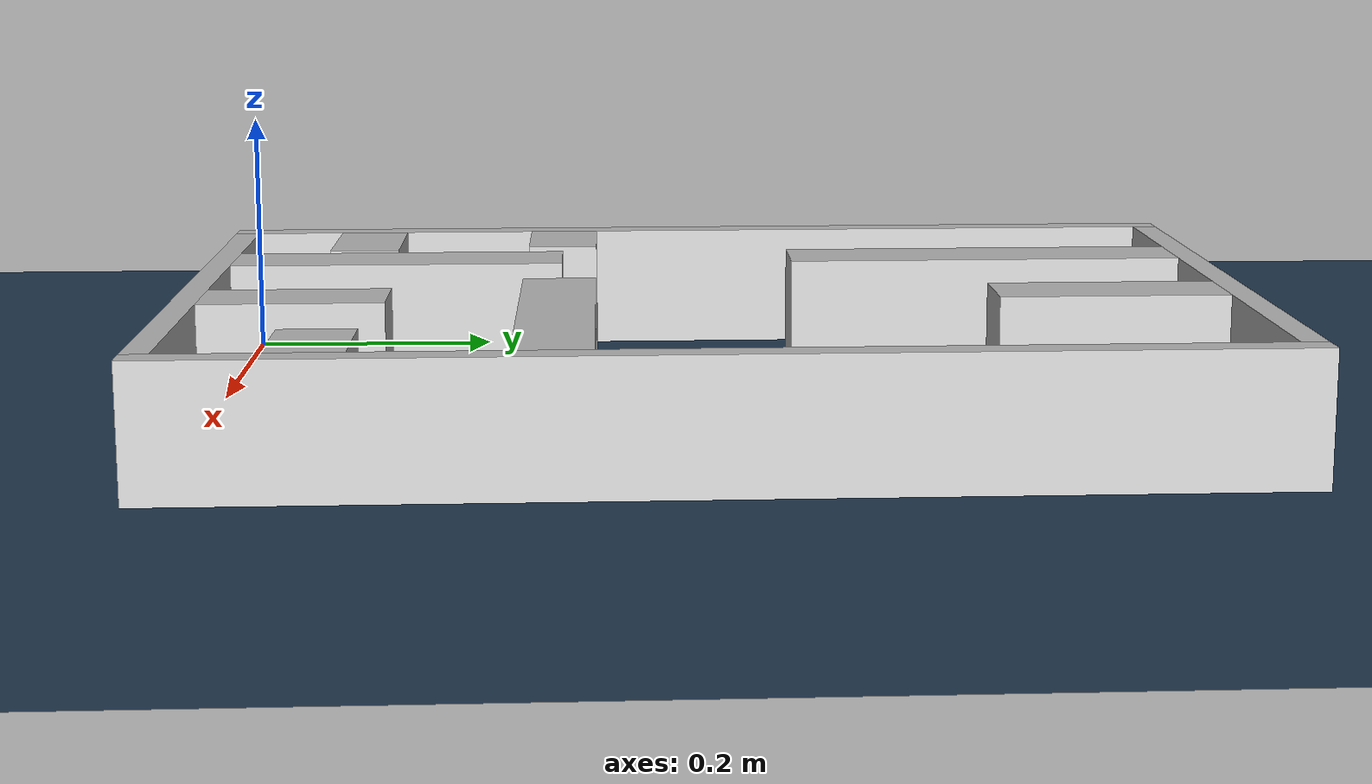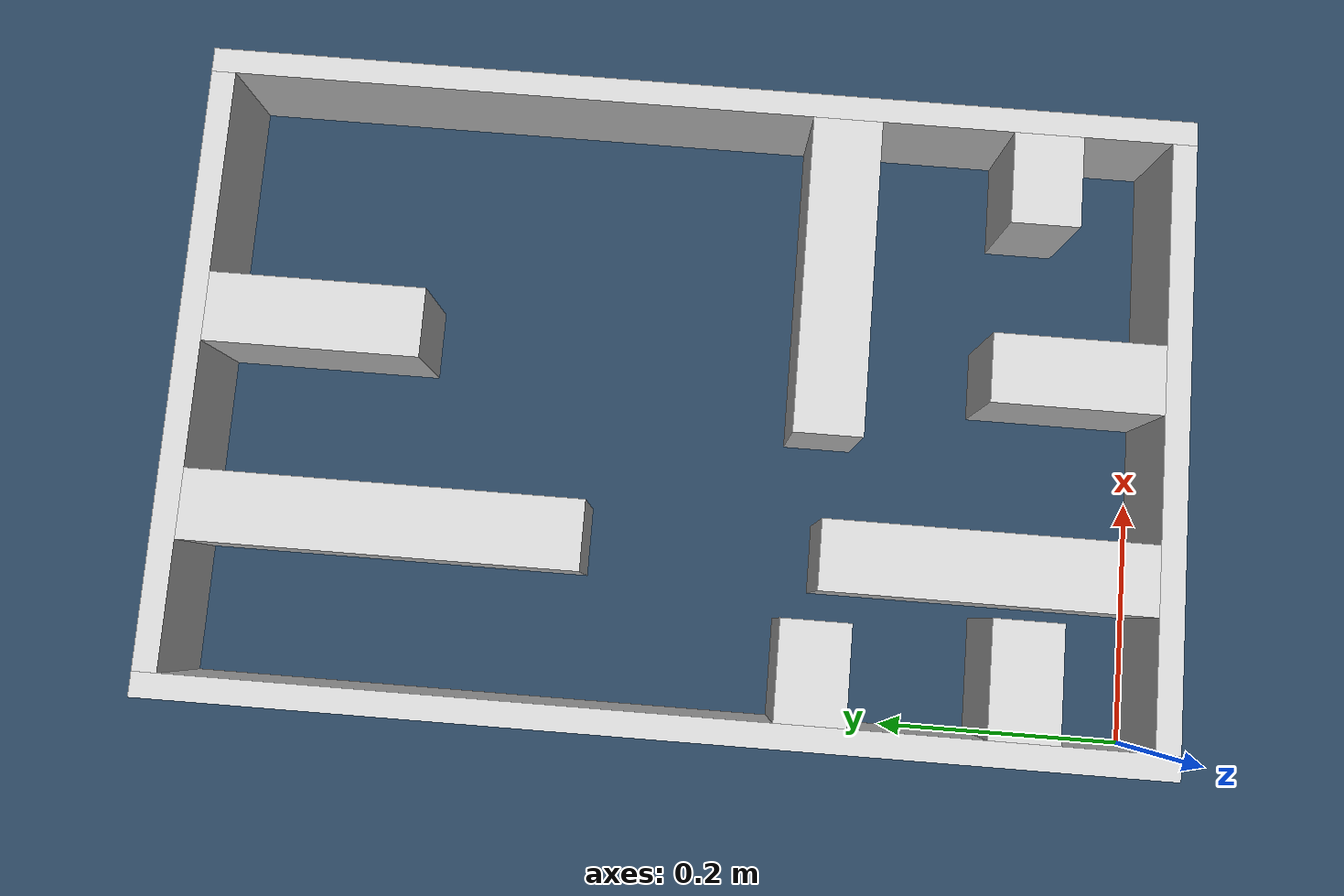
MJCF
<?xml version="1.0" ?>
<mujoco model="generated_real_template">
  <compiler angle="degree"/>
  <option timestep="0.002" integrator="implicitfast" iterations="100" cone="elliptic"/>
  <default>
    <geom density="1"/>
  </default>
  <asset>
    <texture builtin="gradient" height="3072" rgb1="0.3 0.5 0.7" rgb2="0 0 0" type="skybox" width="512"/>
    <texture builtin="checker" height="300" mark="edge" markrgb="0.8 0.8 0.8" name="groundplane" rgb1="0.2 0.3 0.4" rgb2="0.1 0.2 0.3" type="2d" width="300"/>
    <material name="groundplane" reflectance="0.2" texrepeat="5 5" texture="groundplane" texuniform="true"/>
  </asset>
  <worldbody>
    <light dir="0 0 -1" directional="true" pos="0 0 1.5"/>
    <geom name="floor" type="plane" condim="4" friction="0.5 0.005 0.001" material="groundplane" size="0 0 0.05"/>
    <body name="walls">
      <geom name="wall_boundary_left" type="box" condim="4" friction="1.0 0.005 0.0001" rgba="0.8 0.8 0.8 1" pos="-0.010000 0.387500 0.050000" euler="0 0 0.000000" size="0.010000 0.407500 0.050000"/>
      <geom name="wall_boundary_right" type="box" condim="4" friction="1.0 0.005 0.0001" rgba="0.8 0.8 0.8 1" pos="0.500000 0.387500 0.050000" euler="0 0 0.000000" size="0.010000 0.407500 0.050000"/>
      <geom name="wall_boundary_bottom" type="box" condim="4" friction="1.0 0.005 0.0001" rgba="0.8 0.8 0.8 1" pos="0.245000 -0.010000 0.050000" euler="0 0 0.000000" size="0.245000 0.010000 0.050000"/>
      <geom name="wall_boundary_top" type="box" condim="4" friction="1.0 0.005 0.0001" rgba="0.8 0.8 0.8 1" pos="0.245000 0.785000 0.050000" euler="0 0 0.000000" size="0.245000 0.010000 0.050000"/>
      <geom name="wall_inner_1_1" type="box" condim="4" friction="1.0 0.005 0.0001" rgba="0.8 0.8 0.8 1" pos="0.040437 0.266935 0.050000" euler="0 0 0.000000" size="0.040437 0.028500 0.050000"/>
      <geom name="wall_inner_1_2" type="box" condim="4" friction="1.0 0.005 0.0001" rgba="0.8 0.8 0.8 1" pos="0.358800 0.266935 0.050000" euler="0 0 0.000000" size="0.131200 0.028500 0.050000"/>
      <geom name="wall_inner_2_1" type="box" condim="4" friction="1.0 0.005 0.0001" rgba="0.8 0.8 0.8 1" pos="0.292596 0.069752 0.050000" euler="0 0 90.000000" size="0.069752 0.028500 0.050000"/>
      <geom name="wall_inner_2_2" type="box" condim="4" friction="1.0 0.005 0.0001" rgba="0.8 0.8 0.8 1" pos="0.292596 0.686880 0.050000" euler="0 0 90.000000" size="0.088120 0.028500 0.050000"/>
      <geom name="wall_inner_3_1" type="box" condim="4" friction="1.0 0.005 0.0001" rgba="0.8 0.8 0.8 1" pos="0.132533 0.133784 0.050000" euler="0 0 90.000000" size="0.133784 0.028500 0.050000"/>
      <geom name="wall_inner_3_2" type="box" condim="4" friction="1.0 0.005 0.0001" rgba="0.8 0.8 0.8 1" pos="0.132533 0.614973 0.050000" euler="0 0 90.000000" size="0.160027 0.028500 0.050000"/>
      <geom name="wall_inner_4_1" type="box" condim="4" friction="1.0 0.005 0.0001" rgba="0.8 0.8 0.8 1" pos="0.046915 0.101186 0.050000" euler="0 0 0.000000" size="0.046915 0.028500 0.050000"/>
      <geom name="wall_inner_4_2" type="box" condim="4" friction="1.0 0.005 0.0001" rgba="0.8 0.8 0.8 1" pos="0.451732 0.101186 0.050000" euler="0 0 0.000000" size="0.038268 0.028500 0.050000"/>
    </body>
  </worldbody>
</mujoco>
